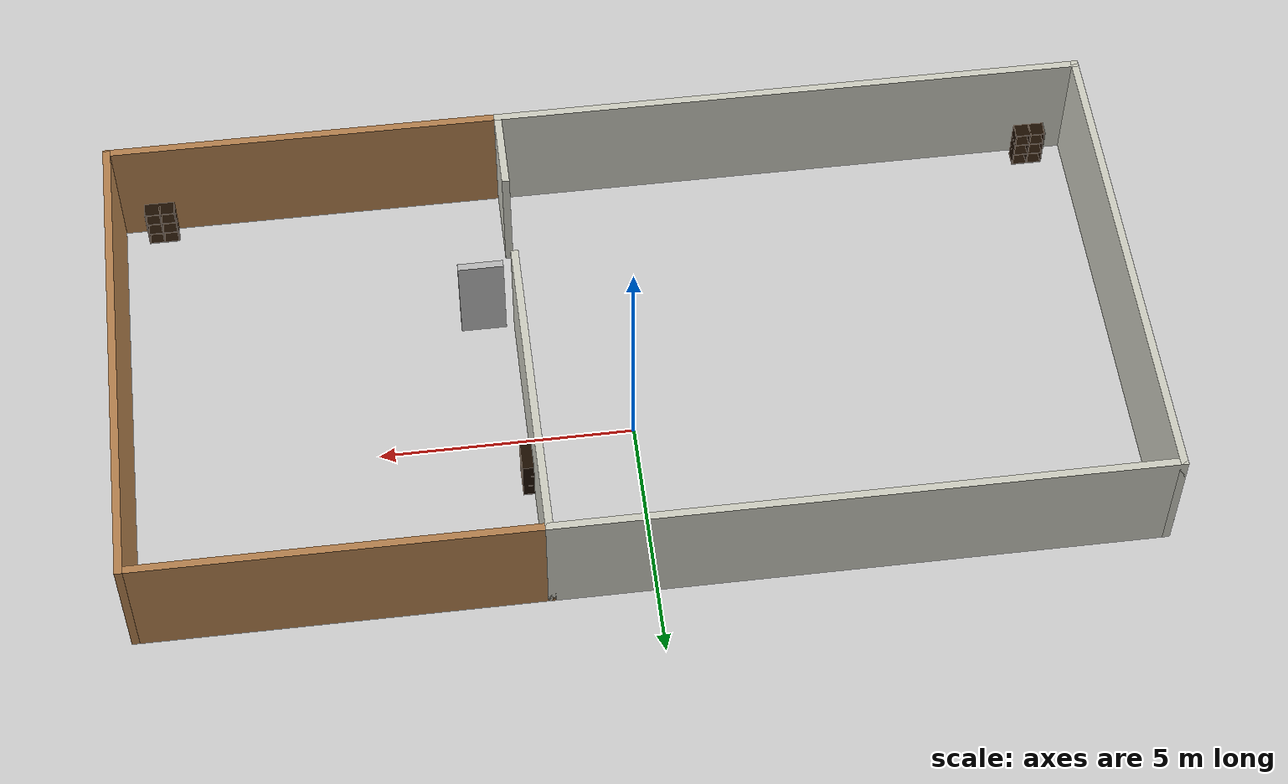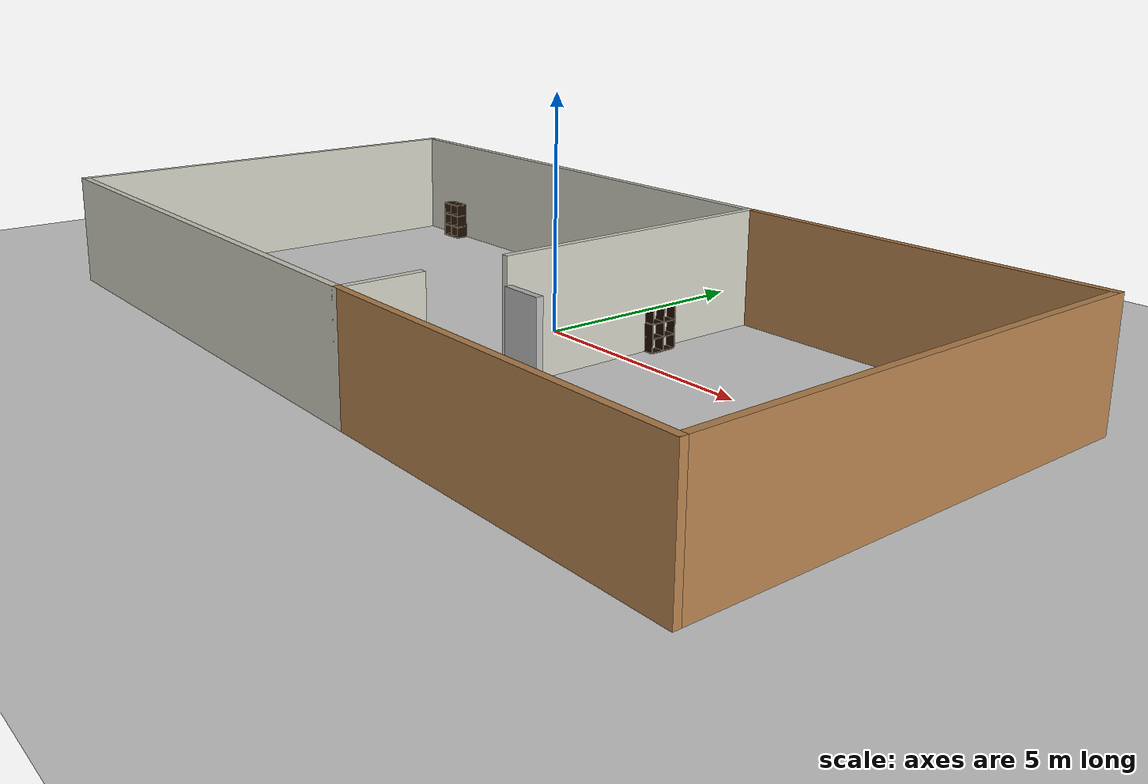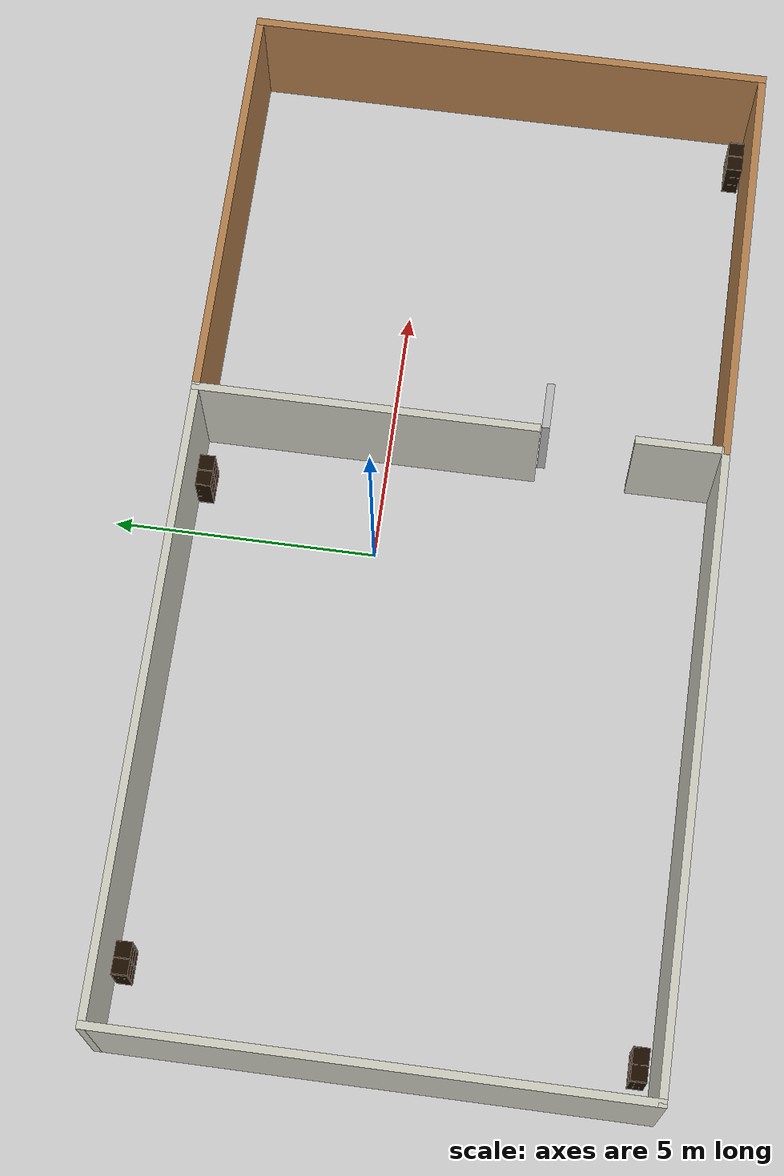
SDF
<sdf version="1.7">
 <world name="default">
  <light name="sun" type="directional">
   <pose>0 0 10 0 -0 0</pose>
   <diffuse>0.8 0.8 0.8 1</diffuse>
   <specular>0.2 0.2 0.2 1</specular>
   <attenuation>
    <range>1000</range>
    <constant>1.0</constant>
    <linear>0.01</linear>
    <quadratic>0.001</quadratic>
   </attenuation>
   <direction>-0.5 0.1 -0.9</direction>
   <spot><inner_angle>0</inner_angle><outer_angle>0</outer_angle><falloff>0</falloff></spot>
  </light>
  <model name="ground_plane">
   <static>1</static>
   <link name="link">
    <collision name="collision">
     <geometry><plane><normal>0 0 1</normal><size>100 100</size></plane></geometry>
     <surface>
      <contact><collide_bitmask>65535</collide_bitmask></contact>
      <friction><ode><mu>100</mu><mu2>50</mu2></ode></friction>
     </surface>
    </collision>
    <visual name="visual">
     <cast_shadows>0</cast_shadows>
     <geometry><plane><normal>0 0 1</normal><size>100 100</size></plane></geometry>
     <material>
      <script><uri>file://media/materials/scripts/gazebo.material</uri><name>Gazebo/Grey</name></script>
     </material>
    </visual>
   </link>
  </model>
  <gravity>0 0 -9.8</gravity>
  <magnetic_field>6e-06 2.3e-05 -4.2e-05</magnetic_field>
  <atmosphere type="adiabatic"/>
  <physics type="ode">
   <max_step_size>0.001</max_step_size>
   <real_time_factor>1</real_time_factor>
   <real_time_update_rate>1000</real_time_update_rate>
  </physics>
  <scene><ambient>0.4 0.4 0.4 1</ambient><background>0.7 0.7 0.7 1</background><shadows>1</shadows></scene>
  <spherical_coordinates>
   <surface_model>EARTH_WGS84</surface_model>
   <latitude_deg>0</latitude_deg>
   <longitude_deg>0</longitude_deg>
   <elevation>0</elevation>
   <heading_deg>0</heading_deg>
  </spherical_coordinates>
  <include name="RA317"><uri>model://RA317</uri><static>1</static></include>
  <include name="door"><uri>model://door</uri><pose>2.67883 -2.9285 0 0 -0 0</pose><static>1</static></include>
  <include>
   <name>delivery_loc0</name>
   <uri>model://6_Cube_StorageE</uri>
   <pose>0.97212 3.36804 0 0 -0 0</pose>
   <static>1</static>
  </include>
  <include>
   <name>delivery_loc1</name>
   <uri>model://6_Cube_StorageE</uri>
   <pose>-9.023418426513672 -5.931640148162842 0 0 -0 0</pose>
   <static>1</static>
  </include>
  <include>
   <name>delivery_loc2</name>
   <uri>model://6_Cube_StorageE</uri>
   <pose>-8.379786491394043 3.331094741821289 0 0 -0 0</pose>
   <static>1</static>
  </include>
  <include>
   <name>delivery_loc3</name>
   <uri>model://6_Cube_StorageE</uri>
   <pose>9.0 -6 0 0 -0 0</pose>
   <static>1</static>
  </include>
  <include>
   <name>delivery_loc4</name>
   <uri>model://6_Cube_StorageE</uri>
   <pose>2.1493 0.9158 0 0 -0 1.571</pose>
   <static>1</static>
  </include>
 </world>
</sdf>

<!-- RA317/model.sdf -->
<sdf version='1.7'>
  <model name='RA317'>
    <pose>0 0 0 0 -0 0</pose>
    <link name='Wall_0'>
      <collision name='Wall_0_Collision'>
        <geometry>
          <box>
            <size>12 0.15 2.5</size>
          </box>
        </geometry>
        <pose>0 0 1.25 0 -0 0</pose>
      </collision>
      <visual name='Wall_0_Visual'>
        <pose>0 0 1.25 0 -0 0</pose>
        <geometry>
          <box>
            <size>12 0.15 2.5</size>
          </box>
        </geometry>
        <material>
          <script>
            <uri>file://media/materials/scripts/gazebo.material</uri>
            <name>Gazebo/PaintedWall</name>
          </script>
          <ambient>1 1 1 1</ambient>
        </material>
        <meta>
          <layer>0</layer>
        </meta>
      </visual>
      <pose>-3.925 3.5925 0 0 -0 0</pose>
    </link>
    <link name='Wall_11'>
      <collision name='Wall_11_Collision'>
        <geometry>
          <box>
            <size>1.75 0.15 2.5</size>
          </box>
        </geometry>
        <pose>0 0 1.25 0 -0 0</pose>
      </collision>
      <visual name='Wall_11_Visual'>
        <pose>0 0 1.25 0 -0 0</pose>
        <geometry>
          <box>
            <size>1.75 0.15 2.5</size>
          </box>
        </geometry>
        <material>
          <script>
            <uri>file://media/materials/scripts/gazebo.material</uri>
            <name>Gazebo/PaintedWall</name>
          </script>
          <ambient>1 1 1 1</ambient>
        </material>
        <meta>
          <layer>0</layer>
        </meta>
      </visual>
      <pose>2 -5.4575 0 0 -0 1.5708</pose>
    </link>
    <link name='Wall_15'>
      <collision name='Wall_15_Collision'>
        <geometry>
          <box>
            <size>8 0.15 2.5</size>
          </box>
        </geometry>
        <pose>0 0 1.25 0 -0 0</pose>
      </collision>
      <visual name='Wall_15_Visual'>
        <pose>0 0 1.25 0 -0 0</pose>
        <geometry>
          <box>
            <size>8 0.15 2.5</size>
          </box>
        </geometry>
        <material>
          <script>
            <uri>file://media/materials/scripts/gazebo.material</uri>
            <name>Gazebo/Wood</name>
          </script>
          <ambient>1 1 1 1</ambient>
        </material>
        <meta>
          <layer>0</layer>
        </meta>
      </visual>
      <pose>5.925 3.5925 0 0 -0 0</pose>
    </link>
    <link name='Wall_16'>
      <collision name='Wall_16_Collision'>
        <geometry>
          <box>
            <size>10 0.15 2.5</size>
          </box>
        </geometry>
        <pose>0 0 1.25 0 -0 0</pose>
      </collision>
      <visual name='Wall_16_Visual'>
        <pose>0 0 1.25 0 -0 0</pose>
        <geometry>
          <box>
            <size>10 0.15 2.5</size>
          </box>
        </geometry>
        <material>
          <script>
            <uri>file://media/materials/scripts/gazebo.material</uri>
            <name>Gazebo/Wood</name>
          </script>
          <ambient>1 1 1 1</ambient>
        </material>
        <meta>
          <layer>0</layer>
        </meta>
      </visual>
      <pose>9.85 -1.3325 0 0 -0 -1.5708</pose>
    </link>
    <link name='Wall_17'>
      <collision name='Wall_17_Collision'>
        <geometry>
          <box>
            <size>8 0.15 2.5</size>
          </box>
        </geometry>
        <pose>0 0 1.25 0 -0 0</pose>
      </collision>
      <visual name='Wall_17_Visual'>
        <pose>0 0 1.25 0 -0 0</pose>
        <geometry>
          <box>
            <size>8 0.15 2.5</size>
          </box>
        </geometry>
        <material>
          <script>
            <uri>file://media/materials/scripts/gazebo.material</uri>
            <name>Gazebo/Wood</name>
          </script>
          <ambient>1 1 1 1</ambient>
        </material>
        <meta>
          <layer>0</layer>
        </meta>
      </visual>
      <pose>5.925 -6.2575 0 0 -0 3.14159</pose>
    </link>
    <link name='Wall_2'>
      <collision name='Wall_2_Collision'>
        <geometry>
          <box>
            <size>10 0.15 2.5</size>
          </box>
        </geometry>
        <pose>0 0 1.25 0 -0 0</pose>
      </collision>
      <visual name='Wall_2_Visual'>
        <pose>0 0 1.25 0 -0 0</pose>
        <geometry>
          <box>
            <size>10 0.15 2.5</size>
          </box>
        </geometry>
        <material>
          <script>
            <uri>file://media/materials/scripts/gazebo.material</uri>
            <name>Gazebo/PaintedWall</name>
          </script>
          <ambient>1 1 1 1</ambient>
        </material>
        <meta>
          <layer>0</layer>
        </meta>
      </visual>
      <pose>-9.85 -1.3325 0 0 -0 -1.5708</pose>
    </link>
    <link name='Wall_3'>
      <collision name='Wall_3_Collision'>
        <geometry>
          <box>
            <size>12 0.15 2.5</size>
          </box>
        </geometry>
        <pose>0 0 1.25 0 -0 0</pose>
      </collision>
      <visual name='Wall_3_Visual'>
        <pose>0 0 1.25 0 -0 0</pose>
        <geometry>
          <box>
            <size>12 0.15 2.5</size>
          </box>
        </geometry>
        <material>
          <script>
            <uri>file://media/materials/scripts/gazebo.material</uri>
            <name>Gazebo/PaintedWall</name>
          </script>
          <ambient>1 1 1 1</ambient>
        </material>
        <meta>
          <layer>0</layer>
        </meta>
      </visual>
      <pose>-3.925 -6.2575 0 0 -0 0</pose>
    </link>
    <link name='Wall_9'>
      <collision name='Wall_9_Collision'>
        <geometry>
          <box>
            <size>6.5 0.15 2.5</size>
          </box>
        </geometry>
        <pose>0 0 1.25 0 -0 0</pose>
      </collision>
      <visual name='Wall_9_Visual'>
        <pose>0 0 1.25 0 -0 0</pose>
        <geometry>
          <box>
            <size>6.5 0.15 2.5</size>
          </box>
        </geometry>
        <material>
          <script>
            <uri>file://media/materials/scripts/gazebo.material</uri>
            <name>Gazebo/PaintedWall</name>
          </script>
          <ambient>1 1 1 1</ambient>
        </material>
        <meta>
          <layer>0</layer>
        </meta>
      </visual>
      <pose>2 0.4175 0 0 -0 -1.5708</pose>
    </link>
    <static>1</static>
  </model>
</sdf>

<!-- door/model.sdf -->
<sdf version='1.6'>
  <model name='door'>
    <link name='link_0'>
         <visual name='visual'>
        <pose frame=''>0 0 1 0 -0 0</pose>
        <geometry>
          <box>
            <size>0.9 0.15 2</size>
          </box>
        </geometry>
          	<material>
          <script>
            <uri>model://door/materials/scripts</uri>
            <uri>model://door/materials/textures</uri>
            <name>door</name>
          </script>
        </material>
        <cast_shadows>1</cast_shadows>
        <transparency>0</transparency>
      </visual>
      <collision name='collision'>
        <laser_retro>0</laser_retro>
        <max_contacts>10</max_contacts>
        <pose frame=''>0 0 1 0 -0 0</pose>
        <geometry>
          <box>
            <size>0.9 0.15 2</size>
          </box>
        </geometry>

      </collision>
    </link>
    <static>1</static>
    <allow_auto_disable>1</allow_auto_disable>
  </model>
</sdf>

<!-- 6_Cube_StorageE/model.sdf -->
<sdf version='1.6'>
  <model name='6_Cube_StorageE'>

    <link name='Wall_0'>
    <pose frame=''>0 0 0.01 0 -0 0</pose>
	<inertial>
	  <mass>1.6201</mass>
	   <inertia>
	     <ixx>0.0119</ixx>
	     <iyy>0.0631</iyy>
	     <izz>0.0513</izz>
    	     <ixy>0</ixy>
	     <ixz>0</ixz>
	     <iyz>0</iyz>
	   </inertia>
	</inertial>
      <collision name='Wall_0_Collision'>
        <geometry>
          <box>
            <size>0.616 0.296 0.02</size>
          </box>
        </geometry>
      </collision>
      <visual name='Wall_0_Visual'>
        <geometry>
          <box>
            <size>0.616 0.296 0.02</size>
          </box>
        </geometry>
        <material>
          <script>
            <uri>file://media/materials/scripts/gazebo.material</uri>
            <name>Gazebo/Grey</name>
          </script>
          <ambient>0.105882 0.0509804 0 1</ambient>
        </material>
      </visual>
   </link>

     <joint type="fixed" name="0_2">
      <pose frame=''>-0.308 0 0 0 0 0</pose>
         <parent>Wall_2</parent>
  	 <child>Wall_0</child>
	 <axis>
	   <xyz>1 0 0</xyz>
	 </axis>
       </joint>

  <joint type="fixed" name="0_12">
      <pose frame=''>0 0 0 0 0 0</pose>
         <parent>Wall_12</parent>
  	 <child>Wall_0</child>
	 <axis>
	   <xyz>0 0 1</xyz>
	 </axis>
       </joint>

  <joint type="fixed" name="0_4">
      <pose frame=''>0.308 0 0 0 0 0</pose>
         <parent>Wall_4</parent>
  	 <child>Wall_0</child>
	 <axis>
	   <xyz>1 0 0</xyz>
	 </axis>
       </joint>

    <link name='Wall_10'>
      <pose frame=''>0 0 0.610 0 0 0</pose>
	<inertial>
	  <mass>1.6201</mass>
	   <inertia>
	     <ixx>0.0119</ixx>
	     <iyy>0.0631</iyy>
	     <izz>0.0513</izz>
    	     <ixy>0</ixy>
	     <ixz>0</ixz>
	     <iyz>0</iyz>
	   </inertia>
	</inertial>
      <collision name='Wall_10_Collision'>
        <geometry>
          <box>
            <size>0.616 0.296 0.02 </size>
          </box>
        </geometry>
      </collision>
      <visual name='Wall_10_Visual'>
          <geometry>
          <box>
            <size>0.616 0.296 0.02</size>
          </box>
        </geometry>
        <material>
          <script>
            <uri>file://media/materials/scripts/gazebo.material</uri>
            <name>Gazebo/Grey</name>
          </script>
          <ambient>0.105882 0.0509804 0 1</ambient>
        </material>
      </visual>
    </link>

     <joint type="fixed" name="10_2">
      <pose frame=''>-0.308 0 0 0 0 0</pose>
         <parent>Wall_2</parent>
  	 <child>Wall_10</child>
	 <axis>
	   <xyz>1 0 0</xyz>
	 </axis>
       </joint>

  <joint type="fixed" name="10_12">
      <pose frame=''>0 0 0 0 0 0</pose>
         <parent>Wall_12</parent>
  	 <child>Wall_10</child>
	 <axis>
	   <xyz>0 0 1</xyz>
	 </axis>
       </joint>

  <joint type="fixed" name="10_4">
      <pose frame=''>0.308 0 0 0 0 0</pose>
         <parent>Wall_4</parent>
  	 <child>Wall_10</child>
	 <axis>
	   <xyz>1 0 0</xyz>
	 </axis>
       </joint>

    <link name='Wall_12'>
  <pose frame=''>0 0 0.4575 0 0 0</pose>
	<inertial>
	  <mass>2.4065</mass>
	   <inertia>
	     <ixx>0.0177</ixx>
	     <iyy>0.1855</iyy>
	     <izz>0.1680</izz>
    	     <ixy>0</ixy>
	     <ixz>0</ixz>
	     <iyz>0</iyz>
	   </inertia>
	</inertial>
      <collision name='Wall_12_Collision'>
        <geometry>
          <box>
            <size>0.02 0.296 0.915</size>
          </box>
        </geometry>
      </collision>
      <visual name='Wall_12_Visual'>
         <geometry>
          <box>
            <size>0.02 0.296 0.915</size>
          </box>
        </geometry>
        <material>
          <script>
            <uri>file://media/materials/scripts/gazebo.material</uri>
            <name>Gazebo/Grey</name>
          </script>
          <ambient>0.105882 0.0509804 0 1</ambient>
        </material>
      </visual>
    </link>

    <link name='Wall_2'>
      <pose frame=''>-0.298 0 0.4575 0 0 0</pose>
	<inertial>
	  <mass>2.4065</mass>
	   <inertia>
	     <ixx>0.0177</ixx>
	     <iyy>0.1855</iyy>
	     <izz>0.1680</izz>
    	     <ixy>0</ixy>
	     <ixz>0</ixz>
	     <iyz>0</iyz>
	   </inertia>
	</inertial>
      <collision name='Wall_2_Collision'>
        <geometry>
          <box>
            <size>0.02 0.296 0.915</size>
          </box>
        </geometry>
      </collision>
      <visual name='Wall_2_Visual'>
        <geometry>
          <box>
            <size>0.02 0.296 0.915</size>
          </box>
        </geometry>
        <material>
          <script>
            <uri>file://media/materials/scripts/gazebo.material</uri>
            <name>Gazebo/Grey</name>
          </script>
          <ambient>0.105882 0.0509804 0 1</ambient>
        </material>
      </visual>
    </link>

    <link name='Wall_4'>
      <pose frame=''>0.298 0 0.4575 0 0 0</pose>
	<inertial>
	  <mass>2.4065</mass>
	   <inertia>
	     <ixx>0.0177</ixx>
	     <iyy>0.1855</iyy>
	     <izz>0.1680</izz>
    	     <ixy>0</ixy>
	     <ixz>0</ixz>
	     <iyz>0</iyz>
	   </inertia>
	</inertial>
      <collision name='Wall_4_Collision'>
        <geometry>
          <box>
            <size>0.02 0.296 0.915</size>
          </box>
        </geometry>
      </collision>
      <visual name='Wall_4_Visual'>
        <geometry>
          <box>
            <size>0.02 0.296 0.915</size>
          </box>
        </geometry>
        <material>
          <script>
            <uri>file://media/materials/scripts/gazebo.material</uri>
            <name>Gazebo/Grey</name>
          </script>
          <ambient>0.105882 0.0509804 0 1</ambient>
        </material>
      </visual>
    </link>

    <link name='Wall_6'>
     <pose frame=''>0 0 0.905 0 0 0</pose>
	<inertial>
	  <mass>1.6201</mass>
	   <inertia>
	     <ixx>0.0119</ixx>
	     <iyy>0.0631</iyy>
	     <izz>0.0513</izz>
    	     <ixy>0</ixy>
	     <ixz>0</ixz>
	     <iyz>0</iyz>
	   </inertia>
	</inertial>
      <collision name='Wall_6_Collision'>
        <geometry>
          <box>
            <size>0.616 0.296 0.02</size>
          </box>
        </geometry>
       </collision>
      <visual name='Wall_6_Visual'>
        <geometry>
          <box>
            <size>0.616 0.296 0.02</size>
          </box>
        </geometry>
        <material>
          <script>
            <uri>file://media/materials/scripts/gazebo.material</uri>
            <name>Gazebo/Grey</name>
          </script>
          <ambient>0.105882 0.0509804 0 1</ambient>
        </material>
      </visual>
     </link>

     <joint type="fixed" name="6_2">
      <pose frame=''>-0.308 0 0 0 0 0</pose>
         <parent>Wall_2</parent>
  	 <child>Wall_6</child>
	 <axis>
	   <xyz>2 0 0</xyz>
	 </axis>
       </joint>

  <joint type="fixed" name="6_12">
      <pose frame=''>0 0 0 0 0 0</pose>
         <parent>Wall_12</parent>
  	 <child>Wall_6</child>
	 <axis>
	   <xyz>0 0 1</xyz>
	 </axis>
       </joint>

  <joint type="fixed" name="6_4">
      <pose frame=''>0.308 0 0 0 0 0</pose>
         <parent>Wall_4</parent>
  	 <child>Wall_6</child>
	 <axis>
	   <xyz>1 0 0</xyz>
	 </axis>
       </joint>

    <link name='Wall_8'>
    <pose frame=''>0 0 0.305 0 0 0</pose>
	<inertial>
	  <mass>1.6201</mass>
	   <inertia>
	     <ixx>0.0119</ixx>
	     <iyy>0.0631</iyy>
	     <izz>0.0513</izz>
    	     <ixy>0</ixy>
	     <ixz>0</ixz>
	     <iyz>0</iyz>
	   </inertia>
	</inertial>
      <collision name='Wall_8_Collision'>
        <geometry>
          <box>
            <size>0.616 0.296 0.02</size>
          </box>
        </geometry>
       </collision>
      <visual name='Wall_8_Visual'>
        <geometry>
          <box>
            <size>0.616 0.296 0.02</size>
          </box>
        </geometry>
        <material>
          <script>
            <uri>file://media/materials/scripts/gazebo.material</uri>
            <name>Gazebo/Grey</name>
          </script>
          <ambient>0.105882 0.0509804 0 1</ambient>
        </material>
      </visual>
      </link>

     <joint type="fixed" name="8_2">
      <pose frame=''>-0.308 0 0 0 0 0</pose>
         <parent>Wall_2</parent>
  	 <child>Wall_8</child>
	 <axis>
	   <xyz>1 0 0</xyz>
	 </axis>
       </joint>

  <joint type="fixed" name="8_12">
      <pose frame=''>0 0 0 0 0 0</pose>
         <parent>Wall_12</parent>
  	 <child>Wall_8</child>
	 <axis>
	   <xyz>0 0 1</xyz>
	 </axis>
       </joint>

  <joint type="fixed" name="8_4">
      <pose frame=''>0.308 0 0 0 0 0</pose>
         <parent>Wall_4</parent>
  	 <child>Wall_8</child>
	 <axis>
	   <xyz>1 0 0</xyz>
	 </axis>
       </joint>

    <static>1</static>
  </model>
</sdf>
